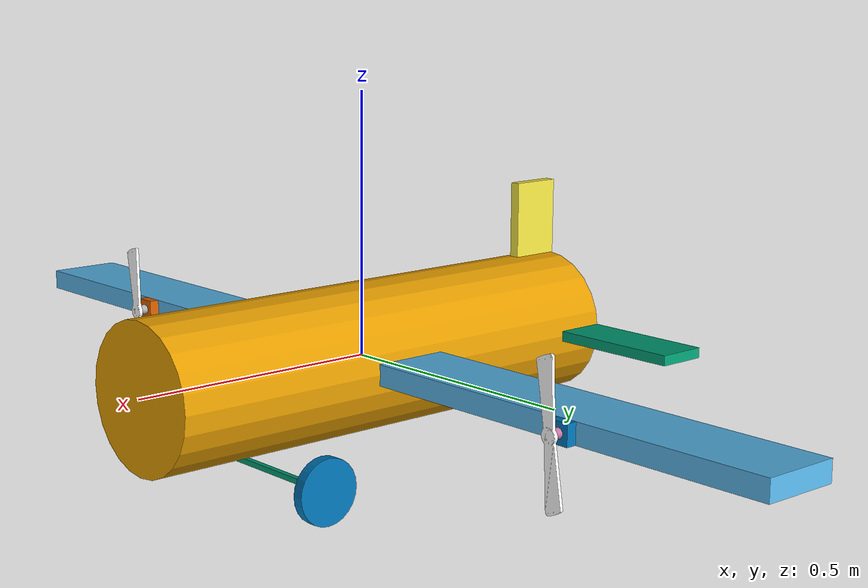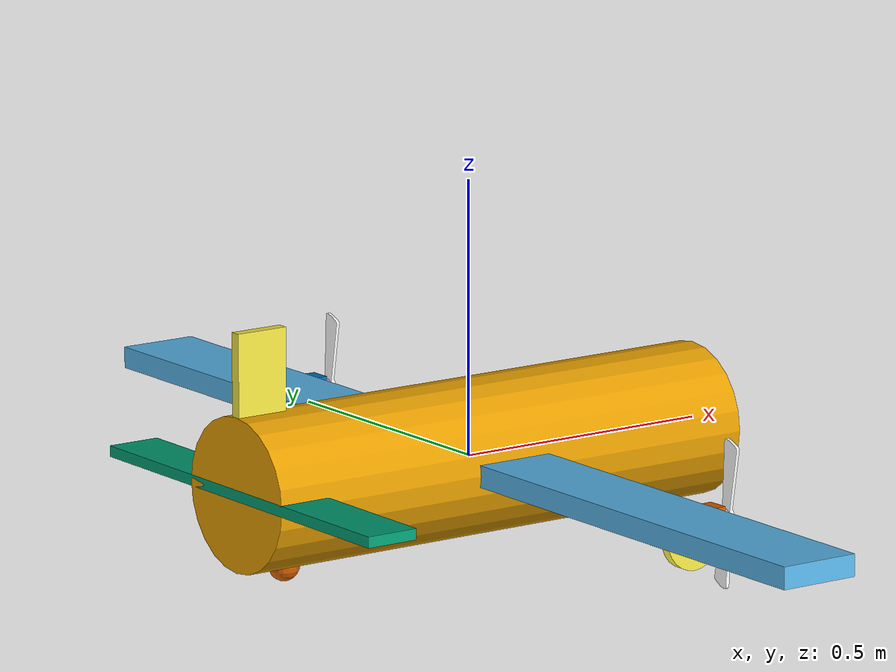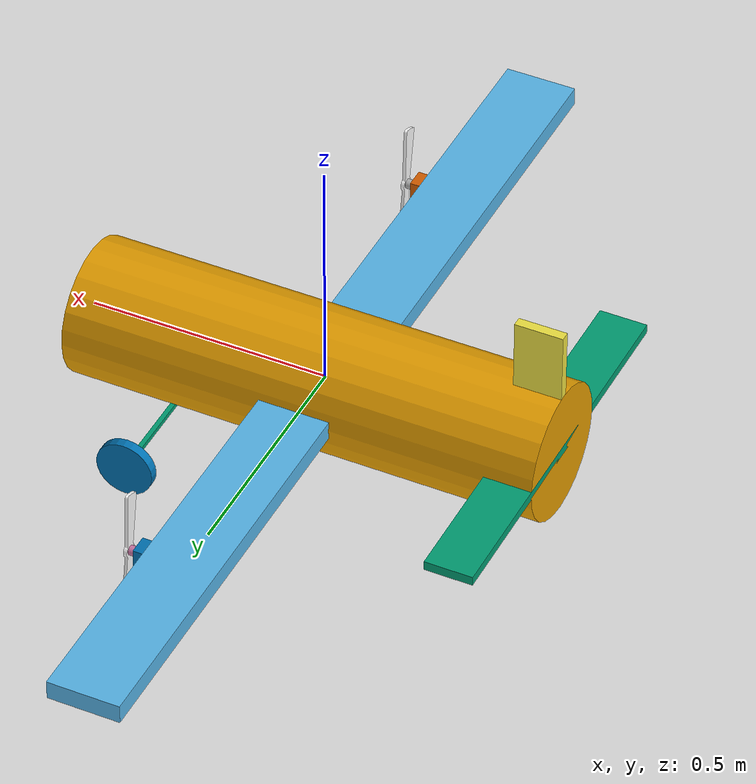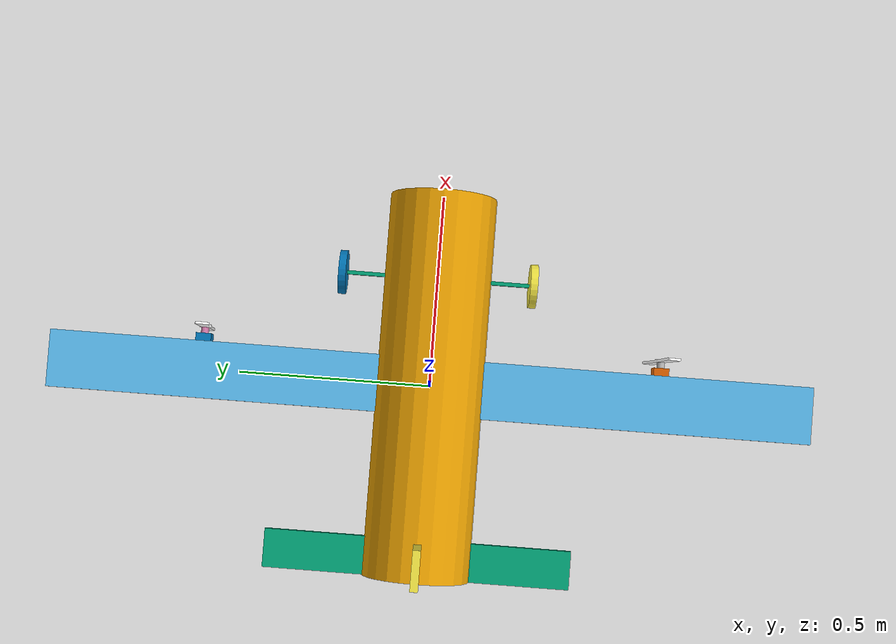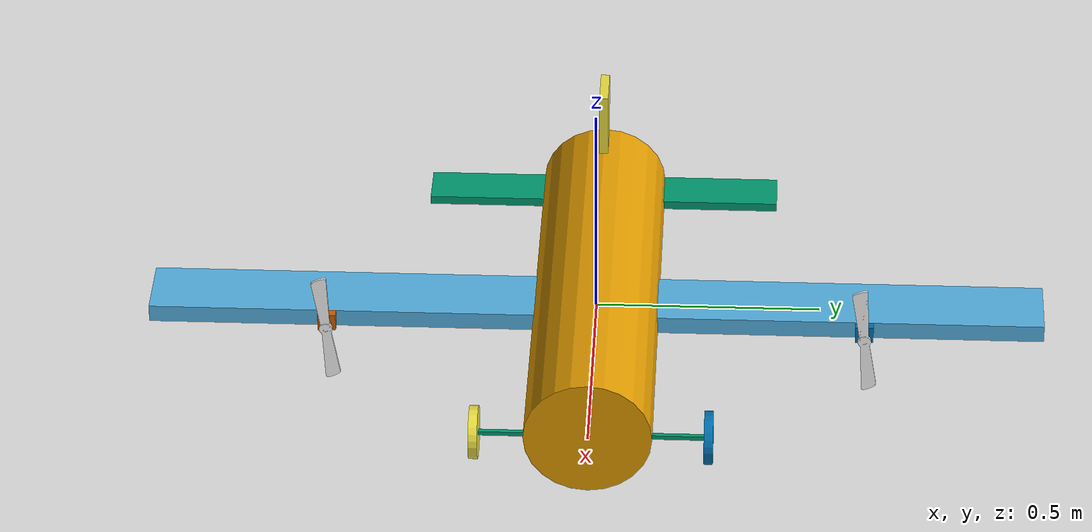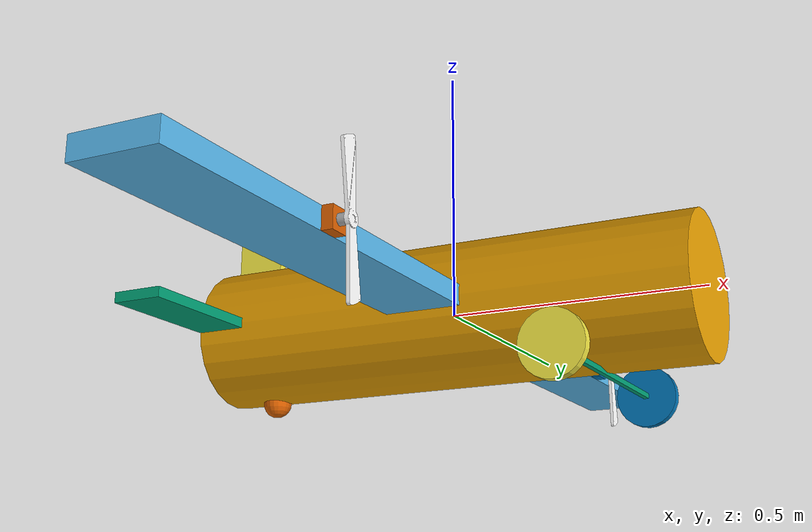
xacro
<?xml version="1.0"?>
<robot name="plane_3wing_2motor" xmlns:xacro="http://www.ros.org/wiki/xacro">

<xacro:property name="mass" value="3"/>

<!-- body, airfoil sizes -->
<xacro:property name="body_s" value="1" />

<!-- body link , body_height, body_rad, body_mass -->
<xacro:property name="body_h" value="${body_s}" />
<xacro:property name="body_r" value="${0.14*body_s}" />
<xacro:property name="body_m" value="${0.3*mass}" />

    <!-- only body_FLU acceptable name for base_link -->
    <link name="body_FLU">
        <visual>
            <origin rpy="0 -${pi/2} 0 " />
            <geometry>
                <cylinder radius="${body_r}" length="${body_h}" />
            </geometry>
        </visual>

        <collision>
            <origin rpy="0 -${pi/2} 0 " />
            <geometry>
                <cylinder radius="${body_r}" length="${body_h}" />
            </geometry>
        </collision>

        <inertial>
            <origin rpy="0 -${pi/2} 0 " />
            <mass value="${body_m}" />
            <inertia    ixx="${1/12*(3*body_r*body_r+body_h*body_h)*body_m}" ixy="0" ixz="0" iyz="0"
                        iyy="${1/12*(3*body_r*body_r+body_h*body_h)*body_m}"
                        izz="${1/2*body_m*body_r*body_r}" />
        </inertial>
    </link>

    ----------------------------------------------------------------------------  airfoils
<!-- airfoil1 link parameters , x, y, z, mass-->
<xacro:property name="airfoil_x" value="${0.15*body_s}" />
<xacro:property name="airfoil_y" value="${2*body_s}" />
<xacro:property name="airfoil_z" value="${0.04*body_s}"/>
<xacro:property name="airfoil_m" value="${0.2*mass}" />

    <!-- only airfoil(Number_0f_Airfoil) acceptable name for airfoils -->
    <link name="airfoil1">
        <visual>
            <geometry>
                <box size="${airfoil_x} ${airfoil_y} ${airfoil_z}" />
            </geometry>
        </visual>

        <collision>
            <geometry>
                <box size="${airfoil_x} ${airfoil_y} ${airfoil_z}" />
            </geometry>
        </collision>

         <inertial>
            <mass value="${airfoil_m}" />
            <inertia    ixx="${1/12*airfoil_m*(airfoil_y*airfoil_y+airfoil_z*airfoil_z)}" ixy="0" ixz="0" iyz="0"
                        iyy="${1/12*airfoil_m*(airfoil_x*airfoil_x+airfoil_z*airfoil_z)}"
                        izz="${1/12*airfoil_m*(airfoil_x*airfoil_x+airfoil_y*airfoil_y)}" />
        </inertial>
    </link>

    <joint name="body_FLU_to_airfoil1" type="revolute">
        <origin xyz="0 0 0" rpy ="0 0 0"/>
        <parent link="body_FLU" />
        <child link="airfoil1" />
        <limit effort="1000.0" velocity="0.5"/>   ---default limits upper=lower=0
    </joint>

 airfoil2 link parameters x, y, z, mass
<xacro:property name="airfoil2_x" value="${0.1*body_s}" />
<xacro:property name="airfoil2_y" value="${0.8*body_s}" />
<xacro:property name="airfoil2_z" value="${0.02*body_s}"/>
<xacro:property name="airfoil2_m" value="${0.05*mass}" />               ----airfoil2 mass

    <!-- only airfoil(Number_0f_Airfoil) acceptable name for airfoils -->
    <link name="airfoil2">
        <visual>
            <geometry>
                <box size="${airfoil2_x} ${airfoil2_y} ${airfoil2_z}" />
            </geometry>
        </visual>

        <collision>
            <geometry>
                <box size="${airfoil2_x} ${airfoil2_y} ${airfoil2_z}" />
            </geometry>
        </collision>

         <inertial>
            <mass value="${airfoil2_m}" />
            <inertia    ixx="${1/12*airfoil2_m*(airfoil2_y*airfoil2_y+airfoil2_z*airfoil2_z)}" ixy="0" ixz="0" iyz="0"
                        iyy="${1/12*airfoil2_m*(airfoil2_x*airfoil2_x+airfoil2_z*airfoil2_z)}"
                        izz="${1/12*airfoil2_m*(airfoil2_x*airfoil2_x+airfoil2_y*airfoil2_y)}" />
        </inertial>
    </link>

    <joint name="body_FLU_to_airfoil2" type="revolute">
        <origin xyz="${-body_h/2+airfoil2_x/2} 0 0" rpy ="0 0 0"/>
        <parent link="body_FLU" />
        <child link="airfoil2" />
        <limit effort="1000.0" velocity="0.5"/>   ---default limits upper=lower=0
    </joint>

<!-- airfoil3 link parameters x, y, z, mass-->
<xacro:property name="airfoil3_x" value="${0.1*body_s}" />
<xacro:property name="airfoil3_y" value="${0.15*body_s}" />
<xacro:property name="airfoil3_z" value="${0.02*body_s}"/>
<xacro:property name="airfoil3_m" value="${0.05*mass}" />               ----airfoil3 mass

    <!-- only airfoil(Number_0f_Airfoil) acceptable name for airfoils -->
    <link name="airfoil3">
        <visual>
            <geometry>
                <box size="${airfoil3_x} ${airfoil3_y} ${airfoil3_z}" />
            </geometry>
        </visual>

        <collision>
            <geometry>
                <box size="${airfoil3_x} ${airfoil3_y} ${airfoil3_z}" />
            </geometry>
        </collision>

         <inertial>
            <mass value="${airfoil3_m}" />
            <inertia    ixx="${1/12*airfoil3_m*(airfoil3_y*airfoil3_y+airfoil3_z*airfoil3_z)}" ixy="0" ixz="0" iyz="0"
                        iyy="${1/12*airfoil3_m*(airfoil3_x*airfoil3_x+airfoil3_z*airfoil3_z)}"
                        izz="${1/12*airfoil3_m*(airfoil3_x*airfoil3_x+airfoil3_y*airfoil3_y)}" />
        </inertial>
    </link>

    <joint name="body_FLU_to_airfoil3" type="revolute">
        <origin xyz="${-body_h/2+airfoil3_x/2} 0 ${body_r+airfoil3_y/2}" rpy ="1.57 0 0"/>
        <parent link="body_FLU" />
        <child link="airfoil3" />
        <limit effort="1000.0" velocity="0.5"/>   ---default limits upper=lower=0
    </joint>

----------------------------------------------------------------------------------- motors
<!-- motor link -->
<!-- motor parameters , x, y, z, mass -->
<xacro:property name="motor_x" value="${0.02*body_s}" />
<xacro:property name="motor_y" value="${0.04*body_s}" />
<xacro:property name="motor_z" value="${0.04*body_s}" />
<xacro:property name="motor_m" value="${0.15*mass}" />

<!-- only motor(Number_0f_Motor) acceptable name for motors -->
    <link name="motor1">
        <visual>
            <origin xyz="${0.5*motor_x} 0 0"/>
            <geometry>
                <box size="${motor_x} ${motor_y} ${motor_z}" />
            </geometry>
        </visual>

        <collision>
            <origin xyz="${0.5*motor_x} 0 0"/>
            <geometry>
                <box size="${motor_x} ${motor_y} ${motor_z}" />
            </geometry>
        </collision>

        <inertial>
            <origin xyz="${0.5*motor_x} 0 0"/>
            <mass value="${motor_m}" />
            <inertia    ixx="${1/12*motor_m*(motor_y*motor_y+motor_z*motor_z)}" ixy="0" ixz="0" iyz="0"
                        iyy="${1/12*motor_m*(motor_x*motor_x+motor_z*motor_z)}"
                        izz="${1/12*motor_m*(motor_x*motor_x+motor_y*motor_y)}" />
        </inertial>
    </link>

    <joint name="airfoil1_to_motor1" type="revolute">
        <origin xyz="${airfoil_x/2} ${0.3*airfoil_y} 0" rpy="0 0 0" />
        <limit effort="1000.0" velocity="0.5"/>  --default limits upper=lower=0
        <parent link="airfoil1" />
        <child link="motor1" />
    </joint>

    <link name="motor2">
        <visual>
            <origin xyz="${0.5*motor_x} 0 0"/>
            <geometry>
                <box size="${motor_x} ${motor_y} ${motor_z}" />
            </geometry>
        </visual>

        <collision>
            <origin xyz="${0.5*motor_x} 0 0"/>
            <geometry>
                <box size="${motor_x} ${motor_y} ${motor_z}" />
            </geometry>
        </collision>

        <inertial>
            <origin xyz="${0.5*motor_x} 0 0"/>
            <mass value="${motor_m}" />
            <inertia    ixx="${1/12*motor_m*(motor_y*motor_y+motor_z*motor_z)}" ixy="0" ixz="0" iyz="0"
                        iyy="${1/12*motor_m*(motor_x*motor_x+motor_z*motor_z)}"
                        izz="${1/12*motor_m*(motor_x*motor_x+motor_y*motor_y)}" />
        </inertial>
    </link>

    <joint name="airfoil1_to_motor2" type="revolute">
        <origin xyz="${airfoil_x/2} -${0.3*airfoil_y} 0" rpy="0 0 0" />
        <limit effort="1000.0" velocity="0.5"/>  --default limits upper=lower=0
        <parent link="airfoil1" />
        <child link="motor2" />
    </joint>

 -----------------------------------------------------------------------------------propeller
<!-- axle link parameters height, rad, mass-->
<xacro:property name="axle_h" value="${0.02*body_s}" />
<xacro:property name="axle_r" value="${0.01*body_s}" />
<xacro:property name="axle_m" value="${0.005*mass}" />

    <link name="axle1">
        <visual>
            <origin xyz="${axle_h/2} 0 0" rpy="0 ${pi/2} 0"/>
            <geometry>
                <cylinder radius="${axle_r}" length="${axle_h}" />
            </geometry>
        </visual>

        <collision>
            <origin xyz="${axle_h/2} 0 0" rpy="0 ${pi/2} 0"/>
            <geometry>
                <cylinder radius="${axle_r}" length="${axle_h}" />
            </geometry>
        </collision>

        <inertial>
            <origin xyz="${axle_h/2} 0 0" />
            <mass value="${axle_m}" />
            <inertia    ixx="${1/12*axle_m*axle_h*axle_h+1/4*axle_m*axle_r*axle_r}" ixy="0" ixz="0" iyz="0"
                        iyy="${1/12*axle_m*axle_h*axle_h+1/4*axle_m*axle_r*axle_r}"
                        izz="${1/2*axle_m*axle_r*axle_r}" />
        </inertial>
    </link>

    <joint name="motor1_to_axle1" type="continuous">
        <origin xyz="${motor_x} 0 0" rpy="0 0 0" />
        <axis xyz="1 0 0" />
        <parent link="motor1" />
        <child link="axle1" />
    </joint>

    <link name="axle2">
        <visual>
            <origin xyz="${axle_h/2} 0 0" rpy="0 ${pi/2} 0"/>
            <geometry>
                <cylinder radius="${axle_r}" length="${axle_h}" />
            </geometry>
        </visual>

        <collision>
            <origin xyz="${axle_h/2} 0 0" rpy="0 ${pi/2} 0"/>
            <geometry>
                <cylinder radius="${axle_r}" length="${axle_h}" />
            </geometry>
        </collision>

        <inertial>
            <origin xyz="${axle_h/2} 0 0" />
            <mass value="${axle_m}" />
            <inertia    ixx="${1/12*axle_m*axle_h*axle_h+1/4*axle_m*axle_r*axle_r}" ixy="0" ixz="0" iyz="0"
                        iyy="${1/12*axle_m*axle_h*axle_h+1/4*axle_m*axle_r*axle_r}"
                        izz="${1/2*axle_m*axle_r*axle_r}" />
        </inertial>
    </link>

    <joint name="motor2_to_axle2" type="continuous">
        <origin xyz="${motor_x} 0 0" rpy="0 0 0" />
        <axis xyz="1 0 0" />
        <parent link="motor2" />
        <child link="axle2" />
    </joint>

<!-- propeller link parameters x, y, z, mass -->
<xacro:property name="propeller_x" value="${0.26*body_s}" />
<xacro:property name="propeller_y" value="${0.04*body_s}" />
<xacro:property name="propeller_z" value="${0.01*body_s}" />
<xacro:property name="propeller_m" value="${0.015*mass}" />

   <link name="prop1">
        <visual>
        <origin xyz="0 -0.03 0" rpy="0 0 0" />
            <geometry>
               <mesh filename="package://last_letter_2/config/param/meshes/propeller.dae" scale="${0.2*body_s} ${0.2*body_s} ${0.2*body_s}"/>
            </geometry>
        </visual>

        <collision>
            <geometry>
                <box size="${propeller_x} ${propeller_y} ${propeller_z}" />
            </geometry>
        </collision>

        <inertial>
            <mass value="${propeller_m}" />
           <inertia     ixx="${1/12*propeller_m*(propeller_y*propeller_y+propeller_z*propeller_z)}" ixy="0" ixz="0" iyz="0"
                        iyy="${1/12*propeller_m*(propeller_x*propeller_x+propeller_z*propeller_z)}"
                        izz="${1/12*propeller_m*(propeller_x*propeller_x+propeller_y*propeller_y)}" />
        </inertial>
    </link>

    <joint name="axle1_to_prop1" type="fixed">
        <origin xyz="${axle_h} 0 0" rpy="0 ${pi/2} 0" />
        <parent link="axle1" />
        <child link="prop1" />
    </joint>

    <link name="prop2">
        <visual>
        <origin xyz="0 -0.03 0" rpy="0 0 0" />
            <geometry>
               <mesh filename="package://last_letter_2/config/param/meshes/propeller.dae" scale="${0.2*body_s} ${0.2*body_s} ${0.2*body_s}"/>
            </geometry>
        </visual>

        <collision>
            <geometry>
                <box size="${propeller_x} ${propeller_y} ${propeller_z}" />
            </geometry>
        </collision>

        <inertial>
            <mass value="${propeller_m}" />
           <inertia     ixx="${1/12*propeller_m*(propeller_y*propeller_y+propeller_z*propeller_z)}" ixy="0" ixz="0" iyz="0"
                        iyy="${1/12*propeller_m*(propeller_x*propeller_x+propeller_z*propeller_z)}"
                        izz="${1/12*propeller_m*(propeller_x*propeller_x+propeller_y*propeller_y)}" />
        </inertial>
    </link>

    <joint name="axle2_to_prop2" type="fixed">
        <origin xyz="${axle_h} 0 0" rpy="0 ${pi/2} 0" />
        <parent link="axle2" />
        <child link="prop2" />
    </joint>

     ---------------------------------------------------------------------------front wheels

     <!-- wheel_base_link parameters, x, y, z, mass-->
<xacro:property name="wheel_base_x" value="${0.01*body_s}" />
<xacro:property name="wheel_base_y" value="${0.5*body_s}" />
<xacro:property name="wheel_base_z" value="${0.01*body_s}" />
<xacro:property name="wheel_base_m" value="${0.05*mass}" />

    <link name="wheel_base">
        <visual>
            <geometry>
                <box size="${wheel_base_x} ${wheel_base_y} ${wheel_base_z}" />
            </geometry>
        </visual>

        <collision>
            <geometry>
                <box size="${wheel_base_x} ${wheel_base_y} ${wheel_base_z}" />
            </geometry>
        </collision>

        <inertial>
            <mass value="${wheel_base_m}" />
            <inertia    ixx="${1/12*wheel_base_m*(wheel_base_y*wheel_base_y+wheel_base_z*wheel_base_z)}" ixy="0" ixz="0" iyz="0"
                        iyy="${1/12*wheel_base_m*(wheel_base_x*wheel_base_x+wheel_base_z*wheel_base_z)}"
                        izz="${1/12*wheel_base_m*(wheel_base_x*wheel_base_x+wheel_base_y*propeller_y)}" />
        </inertial>
    </link>

    <joint name=" body_FLU_to_wheel_base" type="fixed">
        <origin xyz="${0.3*body_h} 0 -${body_r}" rpy="0 0 0" />
        <parent link="body_FLU" />
        <child link="wheel_base" />
    </joint>

<!-- left wheel link parameters, rad, height, mass-->
<xacro:property name="left_wheel_r" value="${0.06*body_s}" />
<xacro:property name="left_wheel_h" value="${0.02*body_s}" />
<xacro:property name="left_wheel_m" value="${0.01*mass}" />
    <link name="left_wheel">
        <visual>
            <origin xyz="0 0 ${left_wheel_h/2}" />
            <geometry>
                <cylinder radius="${left_wheel_r}" length="${left_wheel_h}" />
            </geometry>
        </visual>

        <collision>
            <origin xyz="0 0 ${left_wheel_h/2}" />
            <geometry>
                <cylinder radius="${left_wheel_r}" length="${left_wheel_h}" />
            </geometry>
        </collision>

        <inertial>
            <origin xyz="0 0 ${left_wheel_h/2}" />
            <mass value="${left_wheel_m}" />
           <inertia     ixx="${1/12*left_wheel_m*left_wheel_h*left_wheel_h+1/4*left_wheel_m*left_wheel_r*left_wheel_r}" ixy="0" ixz="0" iyz="0"
                        iyy="${1/12*left_wheel_m*left_wheel_h*left_wheel_h+1/4*left_wheel_m*left_wheel_r*left_wheel_r}"
                        izz="${1/2*left_wheel_m*left_wheel_r*left_wheel_r}" />
        </inertial>
    </link>

    <joint name="wheel_base_to_left_wheel" type="continuous">
        <origin xyz="0 -${wheel_base_y/2} 0" rpy="${pi/2} 0 0" />
        <parent link="wheel_base" />
        <child link="left_wheel" />
        <axis xyz=" 0 0 1" />
    </joint>

<!-- right wheel link parameters rad, height, mass-->
<xacro:property name="right_wheel_r" value="${left_wheel_r}" />
<xacro:property name="right_wheel_h" value="${left_wheel_h}" />
<xacro:property name="right_wheel_m" value="${left_wheel_m}" />

    <link name="right_wheel">
        <visual>
            <origin xyz="0 0 -${right_wheel_h/2}" />
            <geometry>
                <cylinder radius="${right_wheel_r}" length="${right_wheel_h}" />
            </geometry>
        </visual>

        <collision>
            <origin xyz="0 0 -${right_wheel_h/2}" />
            <geometry>
                <cylinder radius="${right_wheel_r}" length="${right_wheel_h}" />
            </geometry>
        </collision>

        <inertial>
            <origin xyz="0 0 -${right_wheel_h/2}" />
           <mass value="${right_wheel_m}" />
           <inertia     ixx="${1/12*right_wheel_m*right_wheel_h*right_wheel_h+1/4*right_wheel_m*right_wheel_r*right_wheel_r}" ixy="0" ixz="0" iyz="0"
                        iyy="${1/12*right_wheel_m*right_wheel_h*right_wheel_h+1/4*right_wheel_m*right_wheel_r*right_wheel_r}"
                        izz="${1/2*right_wheel_m*right_wheel_r*right_wheel_r}" />
        </inertial>
    </link>

    <joint name="wheel_base_to_right_wheel" type="continuous">
        <origin xyz="0 ${wheel_base_y/2} 0" rpy="${pi/2} 0 0" />
        <parent link="wheel_base" />
        <child link="right_wheel" />
        <axis xyz=" 0 0 1" />
    </joint>

    ------------------------------------------------------------------------------------ rear sphere wheel
<!-- rear wheel link parameters, rad, mass -->
<xacro:property name="rear_wheel_r" value="${body_r*0.2}" />
<xacro:property name="rear_wheel_m" value="${body_m/2}" />

    <link name="rear_wheel">
        <visual>
            <geometry>
                <sphere radius="${rear_wheel_r}" />
            </geometry>
        </visual>

        <collision>
            <geometry>
                <sphere radius="${rear_wheel_r}" />
            </geometry>
        </collision>

        <inertial>
            <mass value="${rear_wheel_m}" />
            <inertia    ixx="${2/5*rear_wheel_m*rear_wheel_r*rear_wheel_r}" ixy="0" ixz="0" iyz="0"
                        iyy="${2/5*rear_wheel_m*rear_wheel_r*rear_wheel_r}"
                        izz="${2/5*rear_wheel_m*rear_wheel_r*rear_wheel_r}" />
        </inertial>
    </link>

    <joint name="body_FLU_to_rear_wheel" type="continuous">
        <origin xyz="-${0.4*body_h} 0 -${body_r}" />
        <axis xyz="0 1 0"/>
        <parent link="body_FLU" />
        <child link="rear_wheel" />
    </joint>

<!-- model plugins -->
    <gazebo>
        <plugin name="model_plugin" filename="libmodel_plugin.so"/>
        <plugin name="joint_state_publisher" filename="libgazebo_ros_joint_state_publisher.so">
            <jointName>body_FLU_to_airfoil1,body_FLU_to_airfoil2,body_FLU_to_airfoil3, airfoil1_to_motor1, airfoil1_to_motor2, motor1_to_axle1, motor2_to_axle2, wheel_base_to_left_wheel, wheel_base_to_right_wheel, body_FLU_to_rear_wheel </jointName>
            <robotNamespace>last_letter_2</robotNamespace>
            <updateRate>0</updateRate>
        </plugin>
    </gazebo>

</robot>
